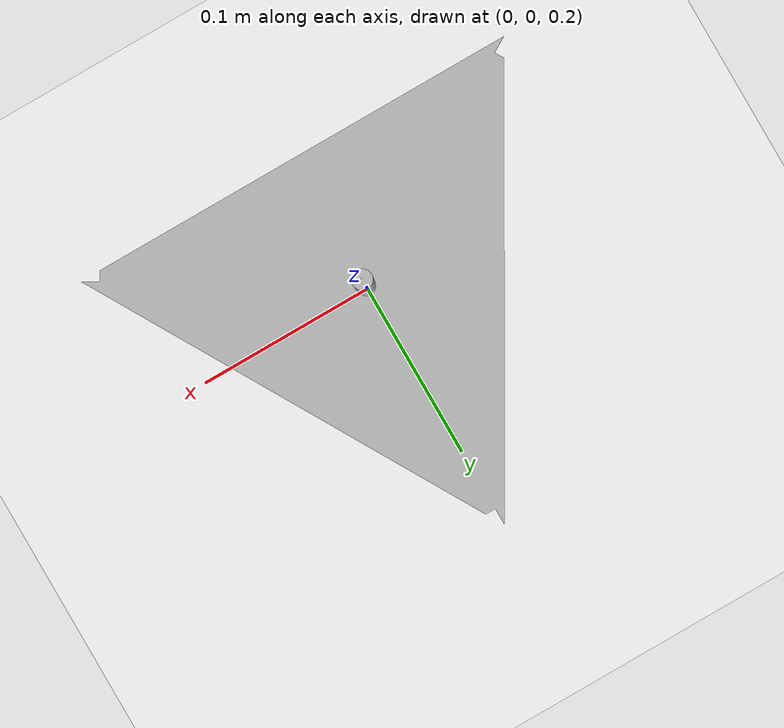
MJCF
<mujoco model="GTPR">
    <!-- set some defaults for units and lighting -->
    <compiler angle="radian" meshdir="."/>

    <!-- import our stl files -->
    <asset>
        <mesh file="base_link.STL" />
        <mesh file="A1.STL" />
        <mesh file="A2.STL" />
        <mesh file="A3.STL" />
        <mesh file="L1-L.STL" />
        <mesh file="L1-R.STL" />
        <mesh file="L2-L.STL" />
        <mesh file="L2-R.STL" />
        <mesh file="U1.STL" />
        <mesh file="U1L.STL" />
        <mesh file="U1R.STL" />
        <mesh file="U2.STL" />
        <mesh file="U2L.STL" />
        <mesh file="U2R.STL" />
        <mesh file="U3.STL" />
        <mesh file="U3L.STL" />
        <mesh file="U3R.STL" />
        <mesh file="WL1-1.STL" />
        <mesh file="WL1-2.STL" />
        <mesh file="WL2-1.STL" />
        <mesh file="WL2-2.STL" />
        <mesh file="WL3-1.STL" />
        <mesh file="WL3-2.STL" />
    </asset>

    <!-- GTPR DEF -->
    <worldbody>
        <!-- lights-->
        <light directional="true" pos="-0.5 0.5 3" dir="0 0 -1" />
        <!-- floor -->
        <geom name="floor" pos="0 0 0" size="1 1 1" type="plane" rgba="100 100 100 0.5"/>

        <body name="base_link" pos="0 0 0.2" >
			<geom name="link0" type="mesh" mesh="base_link" pos="-2.3525E-17 -0.005 2.3559E-17" rgba="0.7451 0.7451 0.7451 1" euler="1.57 0 0"/>

				<body name="A1" pos="0 0 0">
					<joint name="joint0" axis="1 1 1" pos="0 0 0"/>
					<joint name="joint1" axis="1 0 0" pos="0 0 0"/>
					<geom name="A1" type="mesh" mesh="A1" rgba="0.7451 0.7451 0.7451 1" pos="5.3777E-05 4.4185E-09 0.1" euler="0 0 0"/>
					<inertial pos="0 0 0" mass="0.75" diaginertia="1 1 1"/>

				</body>

		</body>

    </worldbody>

    <!-- attach actuators to joints -->
    <actuator>
        <motor name="joint0_motor" joint="joint0"/>
        <motor name="joint1_motor" joint="joint1"/>
    </actuator>

</mujoco>
